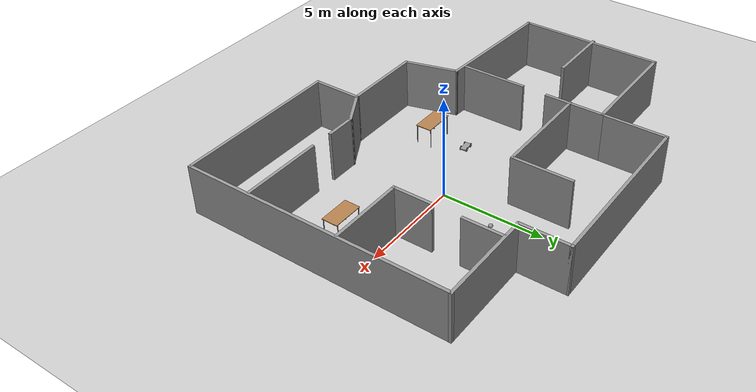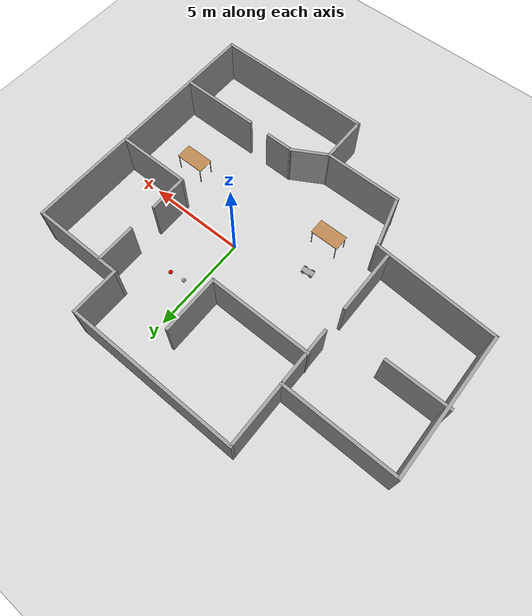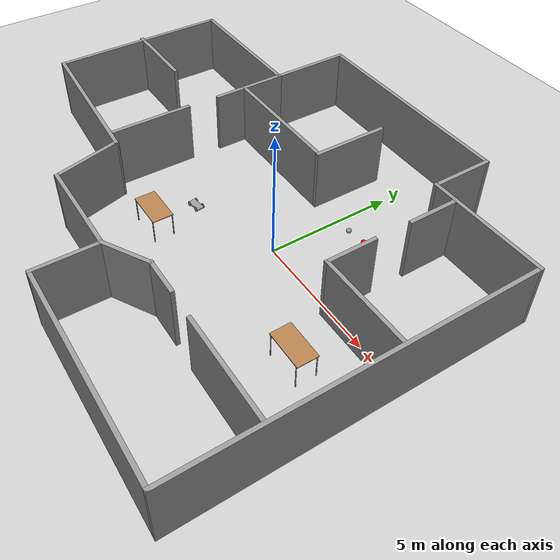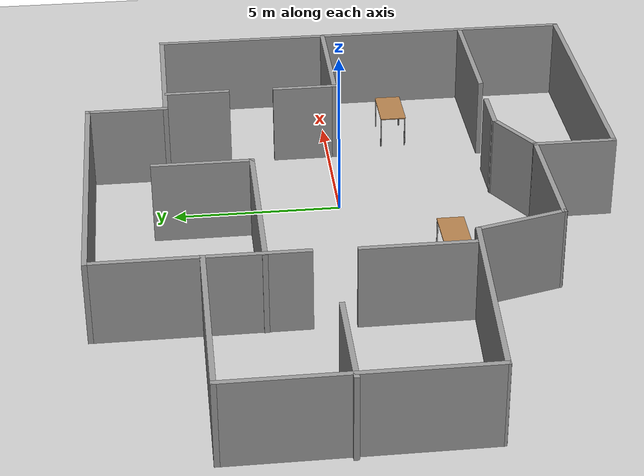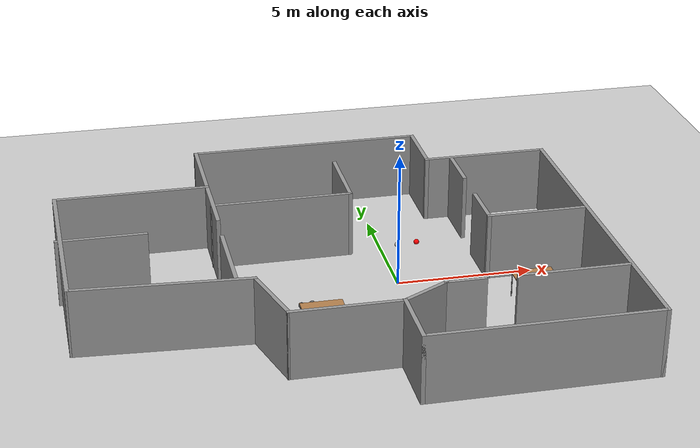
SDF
<sdf version="1.6">
 <world name="default">
  <plugin name="welcome" filename="libwelcome.so"/>
  <light name="sun" type="directional">
   <pose>0 0 10 0 -0 0</pose>
   <diffuse>0.8 0.8 0.8 1</diffuse>
   <specular>0.2 0.2 0.2 1</specular>
   <attenuation>
    <range>1000</range>
    <constant>0.9</constant>
    <linear>0.01</linear>
    <quadratic>0.001</quadratic>
   </attenuation>
   <direction>-0.5 0.1 -0.9</direction>
  </light>
  <model name="ground_plane">
   <static>1</static>
   <link name="link">
    <collision name="collision">
     <geometry><plane><normal>0 0 1</normal><size>100 100</size></plane></geometry>
     <surface><friction><ode><mu>100</mu><mu2>50</mu2></ode></friction></surface>
    </collision>
    <visual name="visual">
     <cast_shadows>0</cast_shadows>
     <geometry><plane><normal>0 0 1</normal><size>100 100</size></plane></geometry>
     <material>
      <script><uri>file://media/materials/scripts/gazebo.material</uri><name>Gazebo/Grey</name></script>
     </material>
    </visual>
   </link>
  </model>
  <gravity>0 0 -9.8</gravity>
  <magnetic_field>6e-06 2.3e-05 -4.2e-05</magnetic_field>
  <atmosphere type="adiabatic"/>
  <physics name="default_physics" default="0" type="ode">
   <max_step_size>0.001</max_step_size>
   <real_time_factor>1</real_time_factor>
   <real_time_update_rate>1000</real_time_update_rate>
  </physics>
  <scene><ambient>0.4 0.4 0.4 1</ambient><background>0.7 0.7 0.7 1</background><shadows>1</shadows></scene>
  <spherical_coordinates>
   <surface_model>EARTH_WGS84</surface_model>
   <latitude_deg>0</latitude_deg>
   <longitude_deg>0</longitude_deg>
   <elevation>0</elevation>
   <heading_deg>0</heading_deg>
  </spherical_coordinates>
  <model name="four_wheeled_0">
   <link name="link_0">
    <pose>0 0 0.1 0 -0 0</pose>
    <inertial>
     <mass>1</mass>
     <inertia>
      <ixx>0.166667</ixx>
      <ixy>0</ixy>
      <ixz>0</ixz>
      <iyy>0.166667</iyy>
      <iyz>0</iyz>
      <izz>0.166667</izz>
     </inertia>
    </inertial>
    <visual name="visual">
     <geometry><box><size>0.6 0.3 0.05</size></box></geometry>
     <material>
      <lighting>1</lighting>
      <script><uri>file://media/materials/scripts/gazebo.material</uri><name>Gazebo/Grey</name></script>
      <shader type="pixel"><normal_map>__default__</normal_map></shader>
      <ambient>0.3 0.3 0.3 1</ambient>
      <diffuse>0.7 0.7 0.7 1</diffuse>
      <specular>0.01 0.01 0.01 1</specular>
      <emissive>0 0 0 1</emissive>
     </material>
    </visual>
    <collision name="collision">
     <geometry><box><size>0.6 0.3 0.05</size></box></geometry>
     <surface>
      <friction>
       <ode><mu>1</mu><mu2>1</mu2><fdir1>0 0 0</fdir1><slip1>0</slip1><slip2>0</slip2></ode>
       <torsional>
        <coefficient>1</coefficient>
        <patch_radius>0</patch_radius>
        <surface_radius>0</surface_radius>
        <use_patch_radius>1</use_patch_radius>
        <ode><slip>0</slip></ode>
       </torsional>
      </friction>
      <bounce><restitution_coefficient>0</restitution_coefficient><threshold>1e+06</threshold></bounce>
      <contact>
       <collide_without_contact>0</collide_without_contact>
       <collide_without_contact_bitmask>1</collide_without_contact_bitmask>
       <collide_bitmask>1</collide_bitmask>
       <ode>
        <soft_cfm>0</soft_cfm>
        <soft_erp>0.2</soft_erp>
        <kp>1e+13</kp>
        <kd>1</kd>
        <max_vel>0.01</max_vel>
        <min_depth>0</min_depth>
       </ode>
       <bullet>
        <split_impulse>1</split_impulse>
        <split_impulse_penetration_threshold>-0.01</split_impulse_penetration_threshold>
        <soft_cfm>0</soft_cfm>
        <soft_erp>0.2</soft_erp>
        <kp>1e+13</kp>
        <kd>1</kd>
       </bullet>
      </contact>
     </surface>
    </collision>
   </link>
   <link name="link_1">
    <pose>0.2 0.16 0.1 1.5707 -0 0</pose>
    <inertial>
     <mass>1</mass>
     <inertia><ixx>0.145833</ixx><ixy>0</ixy><ixz>0</ixz><iyy>0.145833</iyy><iyz>0</iyz><izz>0.125</izz></inertia>
    </inertial>
    <visual name="visual">
     <geometry><cylinder><radius>0.1</radius><length>0.02</length></cylinder></geometry>
     <material>
      <lighting>1</lighting>
      <script><uri>file://media/materials/scripts/gazebo.material</uri><name>Gazebo/Grey</name></script>
      <shader type="pixel"><normal_map>__default__</normal_map></shader>
      <ambient>0.3 0.3 0.3 1</ambient>
      <diffuse>0.7 0.7 0.7 1</diffuse>
      <specular>0.01 0.01 0.01 1</specular>
      <emissive>0 0 0 1</emissive>
     </material>
    </visual>
    <collision name="collision">
     <geometry><cylinder><radius>0.01</radius><length>0.02</length></cylinder></geometry>
     <surface>
      <friction>
       <ode><mu>1</mu><mu2>1</mu2><fdir1>0 0 0</fdir1><slip1>0</slip1><slip2>0</slip2></ode>
       <torsional>
        <coefficient>1</coefficient>
        <patch_radius>0</patch_radius>
        <surface_radius>0</surface_radius>
        <use_patch_radius>1</use_patch_radius>
        <ode><slip>0</slip></ode>
       </torsional>
      </friction>
      <bounce><restitution_coefficient>0</restitution_coefficient><threshold>1e+06</threshold></bounce>
      <contact>
       <collide_without_contact>0</collide_without_contact>
       <collide_without_contact_bitmask>1</collide_without_contact_bitmask>
       <collide_bitmask>1</collide_bitmask>
       <ode>
        <soft_cfm>0</soft_cfm>
        <soft_erp>0.2</soft_erp>
        <kp>1e+13</kp>
        <kd>1</kd>
        <max_vel>0.01</max_vel>
        <min_depth>0</min_depth>
       </ode>
       <bullet>
        <split_impulse>1</split_impulse>
        <split_impulse_penetration_threshold>-0.01</split_impulse_penetration_threshold>
        <soft_cfm>0</soft_cfm>
        <soft_erp>0.2</soft_erp>
        <kp>1e+13</kp>
        <kd>1</kd>
       </bullet>
      </contact>
     </surface>
    </collision>
   </link>
   <link name="link_2">
    <pose>0.2 -0.16 0.1 1.5707 -0 0</pose>
    <inertial>
     <mass>1</mass>
     <inertia><ixx>0.145833</ixx><ixy>0</ixy><ixz>0</ixz><iyy>0.145833</iyy><iyz>0</iyz><izz>0.125</izz></inertia>
    </inertial>
    <visual name="visual">
     <geometry><cylinder><radius>0.1</radius><length>0.02</length></cylinder></geometry>
     <material>
      <lighting>1</lighting>
      <script><uri>file://media/materials/scripts/gazebo.material</uri><name>Gazebo/Grey</name></script>
      <shader type="pixel"><normal_map>__default__</normal_map></shader>
      <ambient>0.3 0.3 0.3 1</ambient>
      <diffuse>0.7 0.7 0.7 1</diffuse>
      <specular>0.01 0.01 0.01 1</specular>
      <emissive>0 0 0 1</emissive>
     </material>
    </visual>
    <collision name="collision">
     <geometry><cylinder><radius>0.1</radius><length>0.02</length></cylinder></geometry>
     <surface>
      <friction>
       <ode><mu>1</mu><mu2>1</mu2><fdir1>0 0 0</fdir1><slip1>0</slip1><slip2>0</slip2></ode>
       <torsional>
        <coefficient>1</coefficient>
        <patch_radius>0</patch_radius>
        <surface_radius>0</surface_radius>
        <use_patch_radius>1</use_patch_radius>
        <ode><slip>0</slip></ode>
       </torsional>
      </friction>
      <bounce><restitution_coefficient>0</restitution_coefficient><threshold>1e+06</threshold></bounce>
      <contact>
       <collide_without_contact>0</collide_without_contact>
       <collide_without_contact_bitmask>1</collide_without_contact_bitmask>
       <collide_bitmask>1</collide_bitmask>
       <ode>
        <soft_cfm>0</soft_cfm>
        <soft_erp>0.2</soft_erp>
        <kp>1e+13</kp>
        <kd>1</kd>
        <max_vel>0.01</max_vel>
        <min_depth>0</min_depth>
       </ode>
       <bullet>
        <split_impulse>1</split_impulse>
        <split_impulse_penetration_threshold>-0.01</split_impulse_penetration_threshold>
        <soft_cfm>0</soft_cfm>
        <soft_erp>0.2</soft_erp>
        <kp>1e+13</kp>
        <kd>1</kd>
       </bullet>
      </contact>
     </surface>
    </collision>
   </link>
   <link name="link_3">
    <pose>-0.2 0.16 0.1 1.5707 -0 0</pose>
    <inertial>
     <mass>1</mass>
     <inertia><ixx>0.145833</ixx><ixy>0</ixy><ixz>0</ixz><iyy>0.145833</iyy><iyz>0</iyz><izz>0.125</izz></inertia>
    </inertial>
    <visual name="visual">
     <geometry><cylinder><radius>0.1</radius><length>0.02</length></cylinder></geometry>
     <material>
      <lighting>1</lighting>
      <script><uri>file://media/materials/scripts/gazebo.material</uri><name>Gazebo/Grey</name></script>
      <shader type="pixel"><normal_map>__default__</normal_map></shader>
      <ambient>0.3 0.3 0.3 1</ambient>
      <diffuse>0.7 0.7 0.7 1</diffuse>
      <specular>0.01 0.01 0.01 1</specular>
      <emissive>0 0 0 1</emissive>
     </material>
    </visual>
    <collision name="collision">
     <geometry><cylinder><radius>0.1</radius><length>0.02</length></cylinder></geometry>
     <surface>
      <friction>
       <ode><mu>1</mu><mu2>1</mu2><fdir1>0 0 0</fdir1><slip1>0</slip1><slip2>0</slip2></ode>
       <torsional>
        <coefficient>1</coefficient>
        <patch_radius>0</patch_radius>
        <surface_radius>0</surface_radius>
        <use_patch_radius>1</use_patch_radius>
        <ode><slip>0</slip></ode>
       </torsional>
      </friction>
      <bounce><restitution_coefficient>0</restitution_coefficient><threshold>1e+06</threshold></bounce>
      <contact>
       <collide_without_contact>0</collide_without_contact>
       <collide_without_contact_bitmask>1</collide_without_contact_bitmask>
       <collide_bitmask>1</collide_bitmask>
       <ode>
        <soft_cfm>0</soft_cfm>
        <soft_erp>0.2</soft_erp>
        <kp>1e+13</kp>
        <kd>1</kd>
        <max_vel>0.01</max_vel>
        <min_depth>0</min_depth>
       </ode>
       <bullet>
        <split_impulse>1</split_impulse>
        <split_impulse_penetration_threshold>-0.01</split_impulse_penetration_threshold>
        <soft_cfm>0</soft_cfm>
        <soft_erp>0.2</soft_erp>
        <kp>1e+13</kp>
        <kd>1</kd>
       </bullet>
      </contact>
     </surface>
    </collision>
   </link>
   <link name="link_4">
    <pose>-0.2 -0.16 0.1 1.5707 -0 0</pose>
    <inertial>
     <mass>1</mass>
     <inertia><ixx>0.145833</ixx><ixy>0</ixy><ixz>0</ixz><iyy>0.145833</iyy><iyz>0</iyz><izz>0.125</izz></inertia>
    </inertial>
    <visual name="visual">
     <geometry><cylinder><radius>0.1</radius><length>0.02</length></cylinder></geometry>
     <material>
      <lighting>1</lighting>
      <script><uri>file://media/materials/scripts/gazebo.material</uri><name>Gazebo/Grey</name></script>
      <shader type="pixel"><normal_map>__default__</normal_map></shader>
      <ambient>0.3 0.3 0.3 1</ambient>
      <diffuse>0.7 0.7 0.7 1</diffuse>
      <specular>0.01 0.01 0.01 1</specular>
      <emissive>0 0 0 1</emissive>
     </material>
    </visual>
    <collision name="collision">
     <geometry><cylinder><radius>0.1</radius><length>0.02</length></cylinder></geometry>
     <surface>
      <friction>
       <ode><mu>1</mu><mu2>1</mu2><fdir1>0 0 0</fdir1><slip1>0</slip1><slip2>0</slip2></ode>
       <torsional>
        <coefficient>1</coefficient>
        <patch_radius>0</patch_radius>
        <surface_radius>0</surface_radius>
        <use_patch_radius>1</use_patch_radius>
        <ode><slip>0</slip></ode>
       </torsional>
      </friction>
      <bounce><restitution_coefficient>0</restitution_coefficient><threshold>1e+06</threshold></bounce>
      <contact>
       <collide_without_contact>0</collide_without_contact>
       <collide_without_contact_bitmask>1</collide_without_contact_bitmask>
       <collide_bitmask>1</collide_bitmask>
       <ode>
        <soft_cfm>0</soft_cfm>
        <soft_erp>0.2</soft_erp>
        <kp>1e+13</kp>
        <kd>1</kd>
        <max_vel>0.01</max_vel>
        <min_depth>0</min_depth>
       </ode>
       <bullet>
        <split_impulse>1</split_impulse>
        <split_impulse_penetration_threshold>-0.01</split_impulse_penetration_threshold>
        <soft_cfm>0</soft_cfm>
        <soft_erp>0.2</soft_erp>
        <kp>1e+13</kp>
        <kd>1</kd>
       </bullet>
      </contact>
     </surface>
    </collision>
   </link>
   <joint name="link_0_JOINT_2" type="revolute">
    <parent>link_0</parent>
    <child>link_3</child>
    <axis>
     <xyz>0 0 1</xyz>
     <use_parent_model_frame>0</use_parent_model_frame>
     <limit>
      <lower>-1.79769e+308</lower>
      <upper>1.79769e+308</upper>
      <effort>-1</effort>
      <velocity>-1</velocity>
     </limit>
     <dynamics>
      <spring_reference>0</spring_reference>
      <spring_stiffness>0</spring_stiffness>
      <damping>0</damping>
     </dynamics>
    </axis>
    <physics>
     <ode><limit><cfm>0</cfm><erp>0.2</erp></limit><suspension><cfm>0</cfm><erp>0.2</erp></suspension></ode>
    </physics>
   </joint>
   <joint name="link_0_JOINT_3" type="revolute">
    <parent>link_0</parent>
    <child>link_2</child>
    <axis>
     <xyz>0 0 1</xyz>
     <use_parent_model_frame>0</use_parent_model_frame>
     <limit>
      <lower>-1.79769e+308</lower>
      <upper>1.79769e+308</upper>
      <effort>-1</effort>
      <velocity>-1</velocity>
     </limit>
     <dynamics>
      <spring_reference>0</spring_reference>
      <spring_stiffness>0</spring_stiffness>
      <damping>0</damping>
     </dynamics>
    </axis>
    <physics>
     <ode><limit><cfm>0</cfm><erp>0.2</erp></limit><suspension><cfm>0</cfm><erp>0.2</erp></suspension></ode>
    </physics>
   </joint>
   <joint name="link_0_JOINT_4" type="revolute">
    <parent>link_0</parent>
    <child>link_1</child>
    <axis>
     <xyz>0 0 1</xyz>
     <use_parent_model_frame>0</use_parent_model_frame>
     <limit>
      <lower>-1.79769e+308</lower>
      <upper>1.79769e+308</upper>
      <effort>-1</effort>
      <velocity>-1</velocity>
     </limit>
     <dynamics>
      <spring_reference>0</spring_reference>
      <spring_stiffness>0</spring_stiffness>
      <damping>0</damping>
     </dynamics>
    </axis>
    <physics>
     <ode><limit><cfm>0</cfm><erp>0.2</erp></limit><suspension><cfm>0</cfm><erp>0.2</erp></suspension></ode>
    </physics>
   </joint>
   <joint name="link_0_JOINT_1" type="revolute">
    <parent>link_0</parent>
    <child>link_4</child>
    <axis>
     <xyz>0 0 1</xyz>
     <use_parent_model_frame>0</use_parent_model_frame>
     <limit>
      <lower>-1.79769e+308</lower>
      <upper>1.79769e+308</upper>
      <effort>-1</effort>
      <velocity>-1</velocity>
     </limit>
     <dynamics>
      <spring_reference>0</spring_reference>
      <spring_stiffness>0</spring_stiffness>
      <damping>0</damping>
      <friction>0</friction>
     </dynamics>
    </axis>
    <physics>
     <ode><limit><cfm>0</cfm><erp>0.2</erp></limit><suspension><cfm>0</cfm><erp>0.2</erp></suspension></ode>
    </physics>
   </joint>
   <static>0</static>
   <pose>-3.52839 -1.16923 -3e-06 -3.3e-05 2.5e-05 0.120195</pose>
  </model>
  <model name="table">
   <static>1</static>
   <link name="link">
    <collision name="surface">
     <pose>0 0 1 0 -0 0</pose>
     <geometry><box><size>1.5 0.8 0.03</size></box></geometry>
     <surface><friction><ode><mu>0.6</mu><mu2>0.6</mu2></ode></friction></surface>
    </collision>
    <visual name="visual1">
     <pose>0 0 1 0 -0 0</pose>
     <geometry><box><size>1.5 0.8 0.03</size></box></geometry>
     <material>
      <script><uri>file://media/materials/scripts/gazebo.material</uri><name>Gazebo/Wood</name></script>
     </material>
    </visual>
    <collision name="front_left_leg">
     <pose>0.68 0.38 0.5 0 -0 0</pose>
     <geometry><cylinder><radius>0.02</radius><length>1</length></cylinder></geometry>
    </collision>
    <visual name="front_left_leg">
     <pose>0.68 0.38 0.5 0 -0 0</pose>
     <geometry><cylinder><radius>0.02</radius><length>1</length></cylinder></geometry>
     <material>
      <script><uri>file://media/materials/scripts/gazebo.material</uri><name>Gazebo/Grey</name></script>
     </material>
    </visual>
    <collision name="front_right_leg">
     <pose>0.68 -0.38 0.5 0 -0 0</pose>
     <geometry><cylinder><radius>0.02</radius><length>1</length></cylinder></geometry>
    </collision>
    <visual name="front_right_leg">
     <pose>0.68 -0.38 0.5 0 -0 0</pose>
     <geometry><cylinder><radius>0.02</radius><length>1</length></cylinder></geometry>
     <material>
      <script><uri>file://media/materials/scripts/gazebo.material</uri><name>Gazebo/Grey</name></script>
     </material>
    </visual>
    <collision name="back_right_leg">
     <pose>-0.68 -0.38 0.5 0 -0 0</pose>
     <geometry><cylinder><radius>0.02</radius><length>1</length></cylinder></geometry>
    </collision>
    <visual name="back_right_leg">
     <pose>-0.68 -0.38 0.5 0 -0 0</pose>
     <geometry><cylinder><radius>0.02</radius><length>1</length></cylinder></geometry>
     <material>
      <script><uri>file://media/materials/scripts/gazebo.material</uri><name>Gazebo/Grey</name></script>
     </material>
    </visual>
    <collision name="back_left_leg">
     <pose>-0.68 0.38 0.5 0 -0 0</pose>
     <geometry><cylinder><radius>0.02</radius><length>1</length></cylinder></geometry>
    </collision>
    <visual name="back_left_leg">
     <pose>-0.68 0.38 0.5 0 -0 0</pose>
     <geometry><cylinder><radius>0.02</radius><length>1</length></cylinder></geometry>
     <material>
      <script><uri>file://media/materials/scripts/gazebo.material</uri><name>Gazebo/Grey</name></script>
     </material>
    </visual>
   </link>
   <pose>-3.33916 -2.94417 0 0 -0 0</pose>
  </model>
  <model name="table_clone">
   <static>1</static>
   <link name="link">
    <collision name="surface">
     <pose>0 0 1 0 -0 0</pose>
     <geometry><box><size>1.5 0.8 0.03</size></box></geometry>
     <surface><friction><ode><mu>0.6</mu><mu2>0.6</mu2></ode></friction></surface>
    </collision>
    <visual name="visual1">
     <pose>0 0 1 0 -0 0</pose>
     <geometry><box><size>1.5 0.8 0.03</size></box></geometry>
     <material>
      <script><uri>file://media/materials/scripts/gazebo.material</uri><name>Gazebo/Wood</name></script>
     </material>
    </visual>
    <collision name="front_left_leg">
     <pose>0.68 0.38 0.5 0 -0 0</pose>
     <geometry><cylinder><radius>0.02</radius><length>1</length></cylinder></geometry>
    </collision>
    <visual name="front_left_leg">
     <pose>0.68 0.38 0.5 0 -0 0</pose>
     <geometry><cylinder><radius>0.02</radius><length>1</length></cylinder></geometry>
     <material>
      <script><uri>file://media/materials/scripts/gazebo.material</uri><name>Gazebo/Grey</name></script>
     </material>
    </visual>
    <collision name="front_right_leg">
     <pose>0.68 -0.38 0.5 0 -0 0</pose>
     <geometry><cylinder><radius>0.02</radius><length>1</length></cylinder></geometry>
    </collision>
    <visual name="front_right_leg">
     <pose>0.68 -0.38 0.5 0 -0 0</pose>
     <geometry><cylinder><radius>0.02</radius><length>1</length></cylinder></geometry>
     <material>
      <script><uri>file://media/materials/scripts/gazebo.material</uri><name>Gazebo/Grey</name></script>
     </material>
    </visual>
    <collision name="back_right_leg">
     <pose>-0.68 -0.38 0.5 0 -0 0</pose>
     <geometry><cylinder><radius>0.02</radius><length>1</length></cylinder></geometry>
    </collision>
    <visual name="back_right_leg">
     <pose>-0.68 -0.38 0.5 0 -0 0</pose>
     <geometry><cylinder><radius>0.02</radius><length>1</length></cylinder></geometry>
     <material>
      <script><uri>file://media/materials/scripts/gazebo.material</uri><name>Gazebo/Grey</name></script>
     </material>
    </visual>
    <collision name="back_left_leg">
     <pose>-0.68 0.38 0.5 0 -0 0</pose>
     <geometry><cylinder><radius>0.02</radius><length>1</length></cylinder></geometry>
    </collision>
    <visual name="back_left_leg">
     <pose>-0.68 0.38 0.5 0 -0 0</pose>
     <geometry><cylinder><radius>0.02</radius><length>1</length></cylinder></geometry>
     <material>
      <script><uri>file://media/materials/scripts/gazebo.material</uri><name>Gazebo/Grey</name></script>
     </material>
    </visual>
   </link>
   <pose>4.41046 -2.14099 0 0 -0 0</pose>
  </model>
  <model name="white_ball">
   <link name="link_0">
    <pose>0 0 0.1 0 -0 0</pose>
    <inertial>
     <mass>1</mass>
     <inertia><ixx>0.1</ixx><ixy>0</ixy><ixz>0</ixz><iyy>0.1</iyy><iyz>0</iyz><izz>0.1</izz></inertia>
    </inertial>
    <visual name="visual">
     <geometry><sphere><radius>0.1</radius></sphere></geometry>
     <material>
      <lighting>1</lighting>
      <script><uri>file://media/materials/scripts/gazebo.material</uri><name>Gazebo/Grey</name></script>
      <shader type="pixel"><normal_map>__default__</normal_map></shader>
      <ambient>1 1 1 1</ambient>
      <diffuse>1 1 1 1</diffuse>
      <specular>1 1 1 1</specular>
      <emissive>1 1 1 1</emissive>
     </material>
    </visual>
    <collision name="collision">
     <geometry><sphere><radius>0.1</radius></sphere></geometry>
     <surface>
      <friction>
       <ode><mu>1</mu><mu2>1</mu2><fdir1>0 0 0</fdir1><slip1>0</slip1><slip2>0</slip2></ode>
       <torsional>
        <coefficient>1</coefficient>
        <patch_radius>0</patch_radius>
        <surface_radius>0</surface_radius>
        <use_patch_radius>1</use_patch_radius>
        <ode><slip>0</slip></ode>
       </torsional>
      </friction>
      <bounce><restitution_coefficient>0</restitution_coefficient><threshold>1e+06</threshold></bounce>
      <contact>
       <collide_without_contact>0</collide_without_contact>
       <collide_without_contact_bitmask>1</collide_without_contact_bitmask>
       <collide_bitmask>1</collide_bitmask>
       <ode>
        <soft_cfm>0</soft_cfm>
        <soft_erp>0.2</soft_erp>
        <kp>1e+13</kp>
        <kd>1</kd>
        <max_vel>0.01</max_vel>
        <min_depth>0</min_depth>
       </ode>
       <bullet>
        <split_impulse>1</split_impulse>
        <split_impulse_penetration_threshold>-0.01</split_impulse_penetration_threshold>
        <soft_cfm>0</soft_cfm>
        <soft_erp>0.2</soft_erp>
        <kp>1e+13</kp>
        <kd>1</kd>
       </bullet>
      </contact>
     </surface>
    </collision>
   </link>
   <static>0</static>
   <pose>0.673484 2.85303 0 0 -0 0</pose>
  </model>
  <model name="red_ball">
   <link name="link_0">
    <inertial>
     <mass>1</mass>
     <inertia><ixx>0.1</ixx><ixy>0</ixy><ixz>0</ixz><iyy>0.1</iyy><iyz>0</iyz><izz>0.1</izz></inertia>
    </inertial>
    <visual name="visual">
     <geometry><sphere><radius>0.1</radius></sphere></geometry>
     <material>
      <lighting>1</lighting>
      <script><uri>file://media/materials/scripts/gazebo.material</uri><name>Gazebo/Grey</name></script>
      <shader type="pixel"><normal_map>__default__</normal_map></shader>
      <ambient>1 0 0 1</ambient>
      <diffuse>1 0 0 1</diffuse>
      <specular>1 0 0 1</specular>
      <emissive>1 0 0 1</emissive>
     </material>
    </visual>
    <collision name="collision">
     <geometry><sphere><radius>0.1</radius></sphere></geometry>
     <surface>
      <friction>
       <ode><mu>1</mu><mu2>1</mu2><fdir1>0 0 0</fdir1><slip1>0</slip1><slip2>0</slip2></ode>
       <torsional>
        <coefficient>1</coefficient>
        <patch_radius>0</patch_radius>
        <surface_radius>0</surface_radius>
        <use_patch_radius>1</use_patch_radius>
        <ode><slip>0</slip></ode>
       </torsional>
      </friction>
      <bounce><restitution_coefficient>0</restitution_coefficient><threshold>1e+06</threshold></bounce>
      <contact>
       <collide_without_contact>0</collide_without_contact>
       <collide_without_contact_bitmask>1</collide_without_contact_bitmask>
       <collide_bitmask>1</collide_bitmask>
       <ode>
        <soft_cfm>0</soft_cfm>
        <soft_erp>0.2</soft_erp>
        <kp>1e+13</kp>
        <kd>1</kd>
        <max_vel>0.01</max_vel>
        <min_depth>0</min_depth>
       </ode>
       <bullet>
        <split_impulse>1</split_impulse>
        <split_impulse_penetration_threshold>-0.01</split_impulse_penetration_threshold>
        <soft_cfm>0</soft_cfm>
        <soft_erp>0.2</soft_erp>
        <kp>1e+13</kp>
        <kd>1</kd>
       </bullet>
      </contact>
     </surface>
    </collision>
   </link>
   <static>0</static>
   <pose>1.43642 2.9307 0.1 0 -0 0</pose>
  </model>
  <model name="floor3">
   <pose>-2.52438 -0.300177 0 0 -0 0</pose>
   <link name="Wall_0">
    <collision name="Wall_0_Collision">
     <geometry><box><size>2.75 0.15 2.5</size></box></geometry>
     <pose>0 0 1.25 0 -0 0</pose>
    </collision>
    <visual name="Wall_0_Visual">
     <pose>0 0 1.25 0 -0 0</pose>
     <geometry><box><size>2.75 0.15 2.5</size></box></geometry>
     <material>
      <script><uri>file://media/materials/scripts/gazebo.material</uri><name>Gazebo/Grey</name></script>
      <ambient>1 1 1 1</ambient>
     </material>
     <meta><layer>0</layer></meta>
    </visual>
    <pose>-2.82199 -4.1193 0 0 0 -1.309</pose>
   </link>
   <link name="Wall_1">
    <collision name="Wall_1_Collision">
     <geometry><box><size>4 0.15 2.5</size></box></geometry>
     <pose>0 0 1.25 0 -0 0</pose>
    </collision>
    <visual name="Wall_1_Visual">
     <pose>0 0 1.25 0 -0 0</pose>
     <geometry><box><size>4 0.15 2.5</size></box></geometry>
     <material>
      <script><uri>file://media/materials/scripts/gazebo.material</uri><name>Gazebo/Grey</name></script>
      <ambient>1 1 1 1</ambient>
     </material>
     <meta><layer>0</layer></meta>
    </visual>
    <pose>-0.560523 -5.375 0 0 -0 0</pose>
   </link>
   <link name="Wall_10">
    <collision name="Wall_10_Collision">
     <geometry><box><size>7.25 0.15 2.5</size></box></geometry>
     <pose>0 0 1.25 0 -0 0</pose>
    </collision>
    <visual name="Wall_10_Visual">
     <pose>0 0 1.25 0 -0 0</pose>
     <geometry><box><size>7.25 0.15 2.5</size></box></geometry>
     <material>
      <script><uri>file://media/materials/scripts/gazebo.material</uri><name>Gazebo/Grey</name></script>
      <ambient>1 1 1 1</ambient>
     </material>
     <meta><layer>0</layer></meta>
    </visual>
    <pose>-9.33552 1.075 0 0 0 -1.5708</pose>
   </link>
   <link name="Wall_11">
    <collision name="Wall_11_Collision">
     <geometry><box><size>6.33928 0.15 2.5</size></box></geometry>
     <pose>0 0 1.25 0 -0 0</pose>
    </collision>
    <visual name="Wall_11_Visual">
     <pose>0 0 1.25 0 -0 0</pose>
     <geometry><box><size>6.33928 0.15 2.5</size></box></geometry>
     <material>
      <script><uri>file://media/materials/scripts/gazebo.material</uri><name>Gazebo/Grey</name></script>
      <ambient>1 1 1 1</ambient>
     </material>
     <meta><layer>0</layer></meta>
    </visual>
    <pose>-6.24699 -2.6693 0 0 0 -0.062826</pose>
   </link>
   <link name="Wall_13">
    <collision name="Wall_13_Collision">
     <geometry><box><size>3.75 0.15 2.5</size></box></geometry>
     <pose>0 0 1.25 0 -0 0</pose>
    </collision>
    <visual name="Wall_13_Visual">
     <pose>0 0 1.25 0 -0 0</pose>
     <geometry><box><size>3.75 0.15 2.5</size></box></geometry>
     <material>
      <script><uri>file://media/materials/scripts/gazebo.material</uri><name>Gazebo/Grey</name></script>
      <ambient>1 1 1 1</ambient>
     </material>
     <meta><layer>0</layer></meta>
    </visual>
    <pose>7.6002 0.09579 0 0 -0 3.14159</pose>
   </link>
   <link name="Wall_14">
    <collision name="Wall_14_Collision">
     <geometry><box><size>2 0.15 2.5</size></box></geometry>
     <pose>0 0 1.25 0 -0 0</pose>
    </collision>
    <visual name="Wall_14_Visual">
     <pose>0 0 1.25 0 -0 0</pose>
     <geometry><box><size>2 0.15 2.5</size></box></geometry>
     <material>
      <script><uri>file://media/materials/scripts/gazebo.material</uri><name>Gazebo/Grey</name></script>
      <ambient>1 1 1 1</ambient>
     </material>
     <meta><layer>0</layer></meta>
    </visual>
    <pose>5.80021 1.02079 0 0 -0 1.5708</pose>
   </link>
   <link name="Wall_17">
    <collision name="Wall_17_Collision">
     <geometry><box><size>2 0.15 2.5</size></box></geometry>
     <pose>0 0 1.25 0 -0 0</pose>
    </collision>
    <visual name="Wall_17_Visual">
     <pose>0 0 1.25 0 -0 0</pose>
     <geometry><box><size>2 0.15 2.5</size></box></geometry>
     <material>
      <script><uri>file://media/materials/scripts/gazebo.material</uri><name>Gazebo/Grey</name></script>
      <ambient>1 1 1 1</ambient>
     </material>
     <meta><layer>0</layer></meta>
    </visual>
    <pose>5.82112 4.37601 0 0 0 -1.5708</pose>
   </link>
   <link name="Wall_19">
    <collision name="Wall_19_Collision">
     <geometry><box><size>2 0.15 2.5</size></box></geometry>
     <pose>0 0 1.25 0 -0 0</pose>
    </collision>
    <visual name="Wall_19_Visual">
     <pose>0 0 1.25 0 -0 0</pose>
     <geometry><box><size>2 0.15 2.5</size></box></geometry>
     <material>
      <script><uri>file://media/materials/scripts/gazebo.material</uri><name>Gazebo/Grey</name></script>
      <ambient>1 1 1 1</ambient>
     </material>
     <meta><layer>0</layer></meta>
    </visual>
    <pose>2.16555 -4.9125 0 0 -0 0.523599</pose>
   </link>
   <link name="Wall_2">
    <collision name="Wall_2_Collision">
     <geometry><box><size>2.5 0.15 2.5</size></box></geometry>
     <pose>0 0 1.25 0 -0 0</pose>
    </collision>
    <visual name="Wall_2_Visual">
     <pose>0 0 1.25 0 -0 0</pose>
     <geometry><box><size>2.5 0.15 2.5</size></box></geometry>
     <material>
      <script><uri>file://media/materials/scripts/gazebo.material</uri><name>Gazebo/Grey</name></script>
      <ambient>1 1 1 1</ambient>
     </material>
     <meta><layer>0</layer></meta>
    </visual>
    <pose>1.36448 -6.55 0 0 0 -1.5708</pose>
   </link>
   <link name="Wall_20">
    <collision name="Wall_20_Collision">
     <geometry><box><size>1.5 0.15 2.5</size></box></geometry>
     <pose>0 0 1.25 0 -0 0</pose>
    </collision>
    <visual name="Wall_20_Visual">
     <pose>0 0 1.25 0 -0 0</pose>
     <geometry><box><size>1.5 0.15 2.5</size></box></geometry>
     <material>
      <script><uri>file://media/materials/scripts/gazebo.material</uri><name>Gazebo/Grey</name></script>
      <ambient>1 1 1 1</ambient>
     </material>
     <meta><layer>0</layer></meta>
    </visual>
    <pose>3.64162 -4.45 0 0 -0 0</pose>
   </link>
   <link name="Wall_22">
    <collision name="Wall_22_Collision">
     <geometry><box><size>4 0.15 2.5</size></box></geometry>
     <pose>0 0 1.25 0 -0 0</pose>
    </collision>
    <visual name="Wall_22_Visual">
     <pose>0 0 1.25 0 -0 0</pose>
     <geometry><box><size>4 0.15 2.5</size></box></geometry>
     <material>
      <script><uri>file://media/materials/scripts/gazebo.material</uri><name>Gazebo/Grey</name></script>
      <ambient>1 1 1 1</ambient>
     </material>
     <meta><layer>0</layer></meta>
    </visual>
    <pose>7.43067 -4.4794 0 0 -0 0</pose>
   </link>
   <link name="Wall_24">
    <collision name="Wall_24_Collision">
     <geometry><box><size>3 0.15 2.5</size></box></geometry>
     <pose>0 0 1.25 0 -0 0</pose>
    </collision>
    <visual name="Wall_24_Visual">
     <pose>0 0 1.25 0 -0 0</pose>
     <geometry><box><size>3 0.15 2.5</size></box></geometry>
     <material>
      <script><uri>file://media/materials/scripts/gazebo.material</uri><name>Gazebo/Grey</name></script>
      <ambient>1 1 1 1</ambient>
     </material>
     <meta><layer>0</layer></meta>
    </visual>
    <pose>-3.73552 3.2 0 0 0 -1.5708</pose>
   </link>
   <link name="Wall_26">
    <collision name="Wall_26_Collision">
     <geometry><box><size>3.25 0.15 2.5</size></box></geometry>
     <pose>0 0 1.25 0 -0 0</pose>
    </collision>
    <visual name="Wall_26_Visual">
     <pose>0 0 1.25 0 -0 0</pose>
     <geometry><box><size>3.25 0.15 2.5</size></box></geometry>
     <material>
      <script><uri>file://media/materials/scripts/gazebo.material</uri><name>Gazebo/Grey</name></script>
      <ambient>1 1 1 1</ambient>
     </material>
     <meta><layer>0</layer></meta>
    </visual>
    <pose>-3.78216 -1.12201 0 0 0 -1.5708</pose>
   </link>
   <link name="Wall_28">
    <collision name="Wall_28_Collision">
     <geometry><box><size>5.25 0.15 2.5</size></box></geometry>
     <pose>0 0 1.25 0 -0 0</pose>
    </collision>
    <visual name="Wall_28_Visual">
     <pose>0 0 1.25 0 -0 0</pose>
     <geometry><box><size>5.25 0.15 2.5</size></box></geometry>
     <material>
      <script><uri>file://media/materials/scripts/gazebo.material</uri><name>Gazebo/Grey</name></script>
      <ambient>1 1 1 1</ambient>
     </material>
     <meta><layer>0</layer></meta>
    </visual>
    <pose>-1.2129 2.97673 0 0 -0 0</pose>
   </link>
   <link name="Wall_29">
    <collision name="Wall_29_Collision">
     <geometry><box><size>3 0.15 2.5</size></box></geometry>
     <pose>0 0 1.25 0 -0 0</pose>
    </collision>
    <visual name="Wall_29_Visual">
     <pose>0 0 1.25 0 -0 0</pose>
     <geometry><box><size>3 0.15 2.5</size></box></geometry>
     <material>
      <script><uri>file://media/materials/scripts/gazebo.material</uri><name>Gazebo/Grey</name></script>
      <ambient>1 1 1 1</ambient>
     </material>
     <meta><layer>0</layer></meta>
    </visual>
    <pose>1.3371 4.40172 0 0 -0 1.5708</pose>
   </link>
   <link name="Wall_3">
    <collision name="Wall_3_Collision">
     <geometry><box><size>8.25 0.15 2.5</size></box></geometry>
     <pose>0 0 1.25 0 -0 0</pose>
    </collision>
    <visual name="Wall_3_Visual">
     <pose>0 0 1.25 0 -0 0</pose>
     <geometry><box><size>8.25 0.15 2.5</size></box></geometry>
     <material>
      <script><uri>file://media/materials/scripts/gazebo.material</uri><name>Gazebo/Grey</name></script>
      <ambient>1 1 1 1</ambient>
     </material>
     <meta><layer>0</layer></meta>
    </visual>
    <pose>5.41448 -7.725 0 0 -0 0</pose>
   </link>
   <link name="Wall_31">
    <collision name="Wall_31_Collision">
     <geometry><box><size>3.25 0.15 2.5</size></box></geometry>
     <pose>0 0 1.25 0 -0 0</pose>
    </collision>
    <visual name="Wall_31_Visual">
     <pose>0 0 1.25 0 -0 0</pose>
     <geometry><box><size>3.25 0.15 2.5</size></box></geometry>
     <material>
      <script><uri>file://media/materials/scripts/gazebo.material</uri><name>Gazebo/Grey</name></script>
      <ambient>1 1 1 1</ambient>
     </material>
     <meta><layer>0</layer></meta>
    </visual>
    <pose>-7.91448 1.21293 0 0 -0 0</pose>
   </link>
   <link name="Wall_4">
    <collision name="Wall_4_Collision">
     <geometry><box><size>13.25 0.15 2.5</size></box></geometry>
     <pose>0 0 1.25 0 -0 0</pose>
    </collision>
    <visual name="Wall_4_Visual">
     <pose>0 0 1.25 0 -0 0</pose>
     <geometry><box><size>13.25 0.15 2.5</size></box></geometry>
     <material>
      <script><uri>file://media/materials/scripts/gazebo.material</uri><name>Gazebo/Grey</name></script>
      <ambient>1 1 1 1</ambient>
     </material>
     <meta><layer>0</layer></meta>
    </visual>
    <pose>9.46448 -1.175 0 0 -0 1.5708</pose>
   </link>
   <link name="Wall_5">
    <collision name="Wall_5_Collision">
     <geometry><box><size>4.75 0.15 2.5</size></box></geometry>
     <pose>0 0 1.25 0 -0 0</pose>
    </collision>
    <visual name="Wall_5_Visual">
     <pose>0 0 1.25 0 -0 0</pose>
     <geometry><box><size>4.75 0.15 2.5</size></box></geometry>
     <material>
      <script><uri>file://media/materials/scripts/gazebo.material</uri><name>Gazebo/Grey</name></script>
      <ambient>1 1 1 1</ambient>
     </material>
     <meta><layer>0</layer></meta>
    </visual>
    <pose>7.16448 5.375 0 0 -0 3.14159</pose>
   </link>
   <link name="Wall_6">
    <collision name="Wall_6_Collision">
     <geometry><box><size>2.5 0.15 2.5</size></box></geometry>
     <pose>0 0 1.25 0 -0 0</pose>
    </collision>
    <visual name="Wall_6_Visual">
     <pose>0 0 1.25 0 -0 0</pose>
     <geometry><box><size>2.5 0.15 2.5</size></box></geometry>
     <material>
      <script><uri>file://media/materials/scripts/gazebo.material</uri><name>Gazebo/Grey</name></script>
      <ambient>1 1 1 1</ambient>
     </material>
     <meta><layer>0</layer></meta>
    </visual>
    <pose>4.86448 6.55 0 0 -0 1.5708</pose>
   </link>
   <link name="Wall_7">
    <collision name="Wall_7_Collision">
     <geometry><box><size>8.75 0.15 2.5</size></box></geometry>
     <pose>0 0 1.25 0 -0 0</pose>
    </collision>
    <visual name="Wall_7_Visual">
     <pose>0 0 1.25 0 -0 0</pose>
     <geometry><box><size>8.75 0.15 2.5</size></box></geometry>
     <material>
      <script><uri>file://media/materials/scripts/gazebo.material</uri><name>Gazebo/Grey</name></script>
      <ambient>1 1 1 1</ambient>
     </material>
     <meta><layer>0</layer></meta>
    </visual>
    <pose>0.564477 7.725 0 0 -0 3.14159</pose>
   </link>
   <link name="Wall_8">
    <collision name="Wall_8_Collision">
     <geometry><box><size>3.25 0.15 2.5</size></box></geometry>
     <pose>0 0 1.25 0 -0 0</pose>
    </collision>
    <visual name="Wall_8_Visual">
     <pose>0 0 1.25 0 -0 0</pose>
     <geometry><box><size>3.25 0.15 2.5</size></box></geometry>
     <material>
      <script><uri>file://media/materials/scripts/gazebo.material</uri><name>Gazebo/Grey</name></script>
      <ambient>1 1 1 1</ambient>
     </material>
     <meta><layer>0</layer></meta>
    </visual>
    <pose>-3.73552 6.175 0 0 0 -1.5708</pose>
   </link>
   <link name="Wall_9">
    <collision name="Wall_9_Collision">
     <geometry><box><size>5.75 0.15 2.5</size></box></geometry>
     <pose>0 0 1.25 0 -0 0</pose>
    </collision>
    <visual name="Wall_9_Visual">
     <pose>0 0 1.25 0 -0 0</pose>
     <geometry><box><size>5.75 0.15 2.5</size></box></geometry>
     <material>
      <script><uri>file://media/materials/scripts/gazebo.material</uri><name>Gazebo/Grey</name></script>
      <ambient>1 1 1 1</ambient>
     </material>
     <meta><layer>0</layer></meta>
    </visual>
    <pose>-6.53552 4.625 0 0 -0 3.14159</pose>
   </link>
   <static>1</static>
  </model>
  <plugin filename="libcollision_map_creator.so" name="collision_map_creator"/>
 </world>
</sdf>
